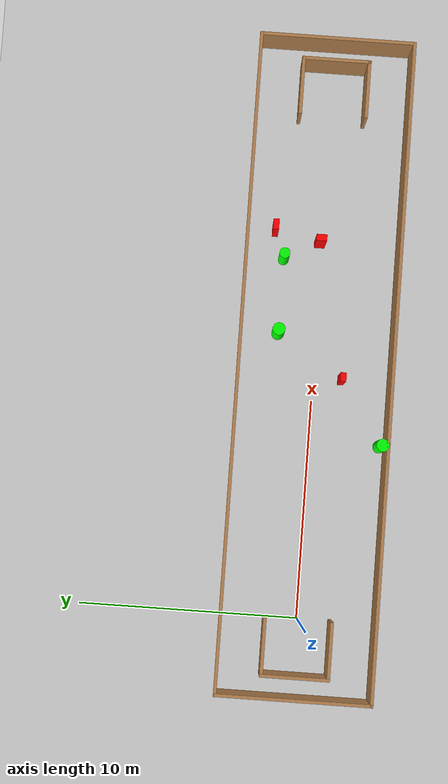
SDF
<sdf version="1.7">
 <world name="default">
  <light name="sun" type="directional">
   <pose>0 0 10 0 -0 0</pose>
   <diffuse>0.8 0.8 0.8 1</diffuse>
   <specular>0.2 0.2 0.2 1</specular>
   <attenuation>
    <range>1000</range>
    <constant>0.9</constant>
    <linear>0.01</linear>
    <quadratic>0.001</quadratic>
   </attenuation>
   <direction>-0.5 0.1 -0.9</direction>
   <spot><inner_angle>0</inner_angle><outer_angle>0</outer_angle><falloff>0</falloff></spot>
  </light>
  <model name="ground_plane">
   <static>1</static>
   <link name="link">
    <collision name="collision">
     <geometry><plane><normal>0 0 1</normal><size>100 100</size></plane></geometry>
     <surface>
      <contact><collide_bitmask>65535</collide_bitmask></contact>
      <friction><ode><mu>100</mu><mu2>50</mu2></ode></friction>
     </surface>
    </collision>
    <visual name="visual">
     <cast_shadows>0</cast_shadows>
     <geometry><plane><normal>0 0 1</normal><size>100 100</size></plane></geometry>
     <material>
      <script><uri>file://media/materials/scripts/gazebo.material</uri><name>Gazebo/Grey</name></script>
     </material>
    </visual>
   </link>
  </model>
  <gravity>0 0 -9.8</gravity>
  <magnetic_field>6e-06 2.3e-05 -4.2e-05</magnetic_field>
  <atmosphere type="adiabatic"/>
  <physics type="ode">
   <max_step_size>0.001</max_step_size>
   <real_time_factor>1</real_time_factor>
   <real_time_update_rate>1000</real_time_update_rate>
  </physics>
  <scene><ambient>0.4 0.4 0.4 1</ambient><background>0.7 0.7 0.7 1</background><shadows>1</shadows></scene>
  <spherical_coordinates>
   <surface_model>EARTH_WGS84</surface_model>
   <latitude_deg>0</latitude_deg>
   <longitude_deg>0</longitude_deg>
   <elevation>0</elevation>
   <heading_deg>0</heading_deg>
  </spherical_coordinates>
  <model name="my_base_walls">
   <link name="Wall_0">
    <collision name="Wall_0_Collision">
     <geometry><box><size>7.15 0.15 2.5</size></box></geometry>
     <pose>0 0 1.25 0 -0 0</pose>
    </collision>
    <visual name="Wall_0_Visual">
     <pose>0 0 1.25 0 -0 0</pose>
     <geometry><box><size>7.15 0.15 2.5</size></box></geometry>
     <material>
      <script><uri>file://media/materials/scripts/gazebo.material</uri><name>Gazebo/Wood</name></script>
      <ambient>1 1 1 1</ambient>
     </material>
     <meta><layer>0</layer></meta>
    </visual>
    <pose>-15 0 0 0 -0 1.5708</pose>
   </link>
   <link name="Wall_10">
    <collision name="Wall_10_Collision">
     <geometry><box><size>2.65 0.15 2.5</size></box></geometry>
     <pose>0 0 1.25 0 -0 0</pose>
    </collision>
    <visual name="Wall_10_Visual">
     <pose>0 0 1.25 0 -0 0</pose>
     <geometry><box><size>2.65 0.15 2.5</size></box></geometry>
     <material>
      <script><uri>file://media/materials/scripts/gazebo.material</uri><name>Gazebo/Wood</name></script>
      <ambient>1 1 1 1</ambient>
     </material>
     <meta><layer>0</layer></meta>
    </visual>
    <pose>-12.75 -1.5 0 0 -0 0</pose>
   </link>
   <link name="Wall_12">
    <collision name="Wall_12_Collision">
     <geometry><box><size>2.65 0.15 2.5</size></box></geometry>
     <pose>0 0 1.25 0 -0 0</pose>
    </collision>
    <visual name="Wall_12_Visual">
     <pose>0 0 1.25 0 -0 0</pose>
     <geometry><box><size>2.65 0.15 2.5</size></box></geometry>
     <material>
      <script><uri>file://media/materials/scripts/gazebo.material</uri><name>Gazebo/Wood</name></script>
      <ambient>1 1 1 1</ambient>
     </material>
     <meta><layer>0</layer></meta>
    </visual>
    <pose>-12.75 1.5 0 0 -0 0</pose>
   </link>
   <link name="Wall_14">
    <collision name="Wall_14_Collision">
     <geometry><box><size>3.15 0.15 2.5</size></box></geometry>
     <pose>0 0 1.25 0 -0 0</pose>
    </collision>
    <visual name="Wall_14_Visual">
     <pose>0 0 1.25 0 -0 0</pose>
     <geometry><box><size>3.15 0.15 2.5</size></box></geometry>
     <material>
      <script><uri>file://media/materials/scripts/gazebo.material</uri><name>Gazebo/Wood</name></script>
      <ambient>1 1 1 1</ambient>
     </material>
     <meta><layer>0</layer></meta>
    </visual>
    <pose>14 0 0 0 -0 -1.5708</pose>
   </link>
   <link name="Wall_15">
    <collision name="Wall_15_Collision">
     <geometry><box><size>2.65 0.15 2.5</size></box></geometry>
     <pose>0 0 1.25 0 -0 0</pose>
    </collision>
    <visual name="Wall_15_Visual">
     <pose>0 0 1.25 0 -0 0</pose>
     <geometry><box><size>2.65 0.15 2.5</size></box></geometry>
     <material>
      <script><uri>file://media/materials/scripts/gazebo.material</uri><name>Gazebo/Wood</name></script>
      <ambient>1 1 1 1</ambient>
     </material>
     <meta><layer>0</layer></meta>
    </visual>
    <pose>12.75 -1.5 0 0 -0 3.14159</pose>
   </link>
   <link name="Wall_17">
    <collision name="Wall_17_Collision">
     <geometry><box><size>2.65 0.15 2.5</size></box></geometry>
     <pose>0 0 1.25 0 -0 0</pose>
    </collision>
    <visual name="Wall_17_Visual">
     <pose>0 0 1.25 0 -0 0</pose>
     <geometry><box><size>2.65 0.15 2.5</size></box></geometry>
     <material>
      <script><uri>file://media/materials/scripts/gazebo.material</uri><name>Gazebo/Wood</name></script>
      <ambient>1 1 1 1</ambient>
     </material>
     <meta><layer>0</layer></meta>
    </visual>
    <pose>12.75 1.5 0 0 -0 3.14159</pose>
   </link>
   <link name="Wall_2">
    <collision name="Wall_2_Collision">
     <geometry><box><size>30.15 0.15 2.5</size></box></geometry>
     <pose>0 0 1.25 0 -0 0</pose>
    </collision>
    <visual name="Wall_2_Visual">
     <pose>0 0 1.25 0 -0 0</pose>
     <geometry><box><size>30.15 0.15 2.5</size></box></geometry>
     <material>
      <script><uri>file://media/materials/scripts/gazebo.material</uri><name>Gazebo/Wood</name></script>
      <ambient>1 1 1 1</ambient>
     </material>
     <meta><layer>0</layer></meta>
    </visual>
    <pose>-0 -3.5 0 0 -0 0</pose>
   </link>
   <link name="Wall_4">
    <collision name="Wall_4_Collision">
     <geometry><box><size>30.15 0.15 2.5</size></box></geometry>
     <pose>0 0 1.25 0 -0 0</pose>
    </collision>
    <visual name="Wall_4_Visual">
     <pose>0 0 1.25 0 -0 0</pose>
     <geometry><box><size>30.15 0.15 2.5</size></box></geometry>
     <material>
      <script><uri>file://media/materials/scripts/gazebo.material</uri><name>Gazebo/Wood</name></script>
      <ambient>1 1 1 1</ambient>
     </material>
     <meta><layer>0</layer></meta>
    </visual>
    <pose>-0 3.5 0 0 -0 0</pose>
   </link>
   <link name="Wall_6">
    <collision name="Wall_6_Collision">
     <geometry><box><size>7.15 0.15 2.5</size></box></geometry>
     <pose>0 0 1.25 0 -0 0</pose>
    </collision>
    <visual name="Wall_6_Visual">
     <pose>0 0 1.25 0 -0 0</pose>
     <geometry><box><size>7.15 0.15 2.5</size></box></geometry>
     <material>
      <script><uri>file://media/materials/scripts/gazebo.material</uri><name>Gazebo/Wood</name></script>
      <ambient>1 1 1 1</ambient>
     </material>
     <meta><layer>0</layer></meta>
    </visual>
    <pose>15 0 0 0 -0 -1.5708</pose>
   </link>
   <link name="Wall_9">
    <collision name="Wall_9_Collision">
     <geometry><box><size>3.15 0.15 2.5</size></box></geometry>
     <pose>0 0 1.25 0 -0 0</pose>
    </collision>
    <visual name="Wall_9_Visual">
     <pose>0 0 1.25 0 -0 0</pose>
     <geometry><box><size>3.15 0.15 2.5</size></box></geometry>
     <material>
      <script><uri>file://media/materials/scripts/gazebo.material</uri><name>Gazebo/Wood</name></script>
      <ambient>1 1 1 1</ambient>
     </material>
     <meta><layer>0</layer></meta>
    </visual>
    <pose>-14 0 0 0 -0 -1.5708</pose>
   </link>
   <static>1</static>
   <pose>11.5 0 0 0 -0 0</pose>
  </model>
  <model name="cylinder1">
   <static>1</static>
   <link name="link">
    <inertial>
     <mass>1</mass>
     <inertia><ixx>0.5</ixx><ixy>0</ixy><ixz>0</ixz><iyy>0.5</iyy><iyz>0</iyz><izz>1</izz></inertia>
    </inertial>
    <collision name="collision">
     <geometry><cylinder><radius>0.2908429877215989</radius><length>2.5</length></cylinder></geometry>
    </collision>
    <visual name="visual">
     <geometry><cylinder><radius>0.2908429877215989</radius><length>2.5</length></cylinder></geometry>
     <material>
      <ambient>0 1 0 1</ambient>
      <diffuse>0 1 0 1</diffuse>
      <specular>0.1 0.1 0.1 1</specular>
      <emissive>0 0 0 0</emissive>
     </material>
    </visual>
   </link>
   <pose>8.121661132266231 -3.2513891389605067 1.25 0 0 0</pose>
  </model>
  <model name="cylinder2">
   <static>1</static>
   <link name="link">
    <inertial>
     <mass>1</mass>
     <inertia><ixx>0.5</ixx><ixy>0</ixy><ixz>0</ixz><iyy>0.5</iyy><iyz>0</iyz><izz>1</izz></inertia>
    </inertial>
    <collision name="collision">
     <geometry><cylinder><radius>0.28797004677645044</radius><length>2.5</length></cylinder></geometry>
    </collision>
    <visual name="visual">
     <geometry><cylinder><radius>0.28797004677645044</radius><length>2.5</length></cylinder></geometry>
     <material>
      <ambient>0 1 0 1</ambient>
      <diffuse>0 1 0 1</diffuse>
      <specular>0.1 0.1 0.1 1</specular>
      <emissive>0 0 0 0</emissive>
     </material>
    </visual>
   </link>
   <pose>13.03084531633378 1.7760213657941657 1.25 0 0 0</pose>
  </model>
  <model name="cylinder3">
   <static>1</static>
   <link name="link">
    <inertial>
     <mass>1</mass>
     <inertia><ixx>0.5</ixx><ixy>0</ixy><ixz>0</ixz><iyy>0.5</iyy><iyz>0</iyz><izz>1</izz></inertia>
    </inertial>
    <collision name="collision">
     <geometry><cylinder><radius>0.24416044040317766</radius><length>2.5</length></cylinder></geometry>
    </collision>
    <visual name="visual">
     <geometry><cylinder><radius>0.24416044040317766</radius><length>2.5</length></cylinder></geometry>
     <material>
      <ambient>0 1 0 1</ambient>
      <diffuse>0 1 0 1</diffuse>
      <specular>0.1 0.1 0.1 1</specular>
      <emissive>0 0 0 0</emissive>
     </material>
    </visual>
   </link>
   <pose>16.490422713209202 1.7499840657792811 1.25 0 0 0</pose>
  </model>
  <model name="box1">
   <static>1</static>
   <link name="link">
    <inertial>
     <mass>1</mass>
     <inertia><ixx>0.083</ixx><ixy>0</ixy><ixz>0</ixz><iyy>0.083</iyy><iyz>0</iyz><izz>0.083</izz></inertia>
    </inertial>
    <collision name="collision">
     <geometry><box><size>0.4636413489797278 0.2675166188419166 2.5</size></box></geometry>
    </collision>
    <visual name="visual">
     <geometry><box><size>0.4636413489797278 0.2675166188419166 2.5</size></box></geometry>
     <material>
      <ambient>1 0 0 1</ambient>
      <diffuse>1 0 0 1</diffuse>
      <specular>0.1 0.1 0.1 1</specular>
      <emissive>0 0 0 0</emissive>
     </material>
    </visual>
    <sensor name="my_contact" type="contact">
     <contact><collision>box_collision</collision><topic>__default_topic__</topic></contact>
    </sensor>
   </link>
   <pose>17.78246126508248 2.2258407768182966 1.25 0 0 0</pose>
  </model>
  <model name="box2">
   <static>1</static>
   <link name="link">
    <inertial>
     <mass>1</mass>
     <inertia><ixx>0.083</ixx><ixy>0</ixy><ixz>0</ixz><iyy>0.083</iyy><iyz>0</iyz><izz>0.083</izz></inertia>
    </inertial>
    <collision name="collision">
     <geometry><box><size>0.2935557792574104 0.4795506171980685 2.5</size></box></geometry>
    </collision>
    <visual name="visual">
     <geometry><box><size>0.2935557792574104 0.4795506171980685 2.5</size></box></geometry>
     <material>
      <ambient>1 0 0 1</ambient>
      <diffuse>1 0 0 1</diffuse>
      <specular>0.1 0.1 0.1 1</specular>
      <emissive>0 0 0 0</emissive>
     </material>
    </visual>
    <sensor name="my_contact" type="contact">
     <contact><collision>box_collision</collision><topic>__default_topic__</topic></contact>
    </sensor>
   </link>
   <pose>17.308762731966347 0.12559388275010086 1.25 0 0 0</pose>
  </model>
  <model name="box3">
   <static>1</static>
   <link name="link">
    <inertial>
     <mass>1</mass>
     <inertia><ixx>0.083</ixx><ixy>0</ixy><ixz>0</ixz><iyy>0.083</iyy><iyz>0</iyz><izz>0.083</izz></inertia>
    </inertial>
    <collision name="collision">
     <geometry><box><size>0.4074021076487633 0.265320982231275 2.5</size></box></geometry>
    </collision>
    <visual name="visual">
     <geometry><box><size>0.4074021076487633 0.265320982231275 2.5</size></box></geometry>
     <material>
      <ambient>1 0 0 1</ambient>
      <diffuse>1 0 0 1</diffuse>
      <specular>0.1 0.1 0.1 1</specular>
      <emissive>0 0 0 0</emissive>
     </material>
    </visual>
    <sensor name="my_contact" type="contact">
     <contact><collision>box_collision</collision><topic>__default_topic__</topic></contact>
    </sensor>
   </link>
   <pose>11.061885876037849 -1.272137911821908 1.25 0 0 0</pose>
  </model>
 </world>
</sdf>
